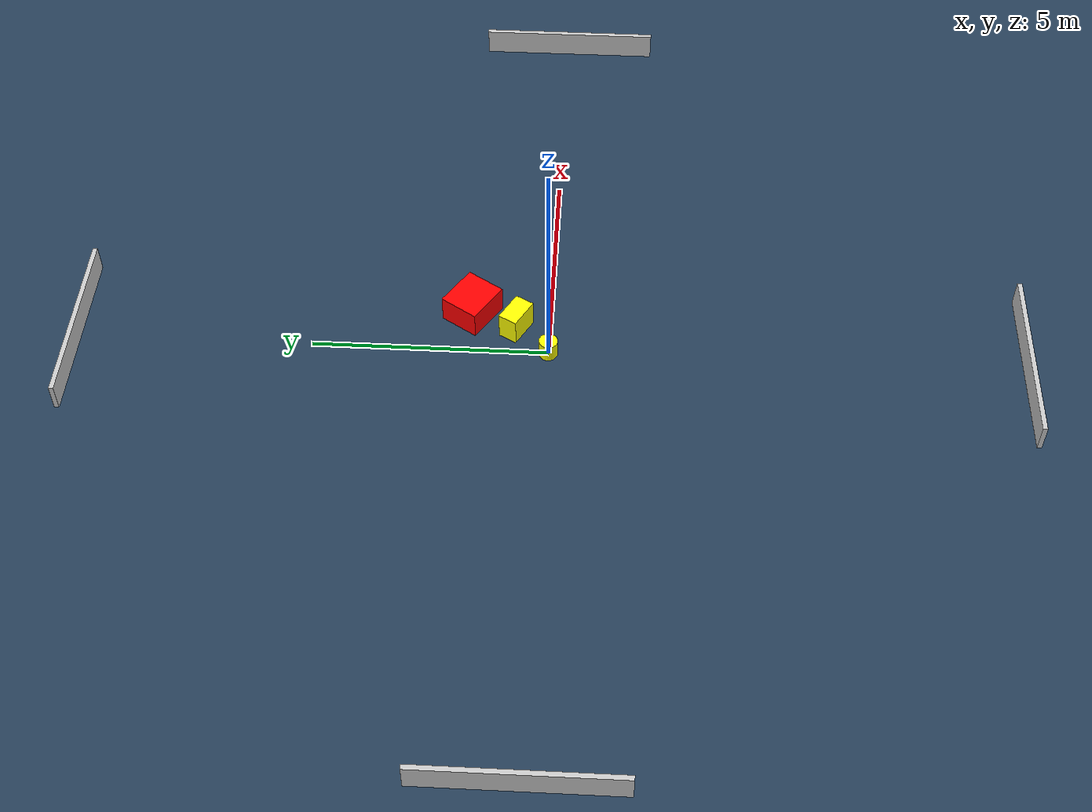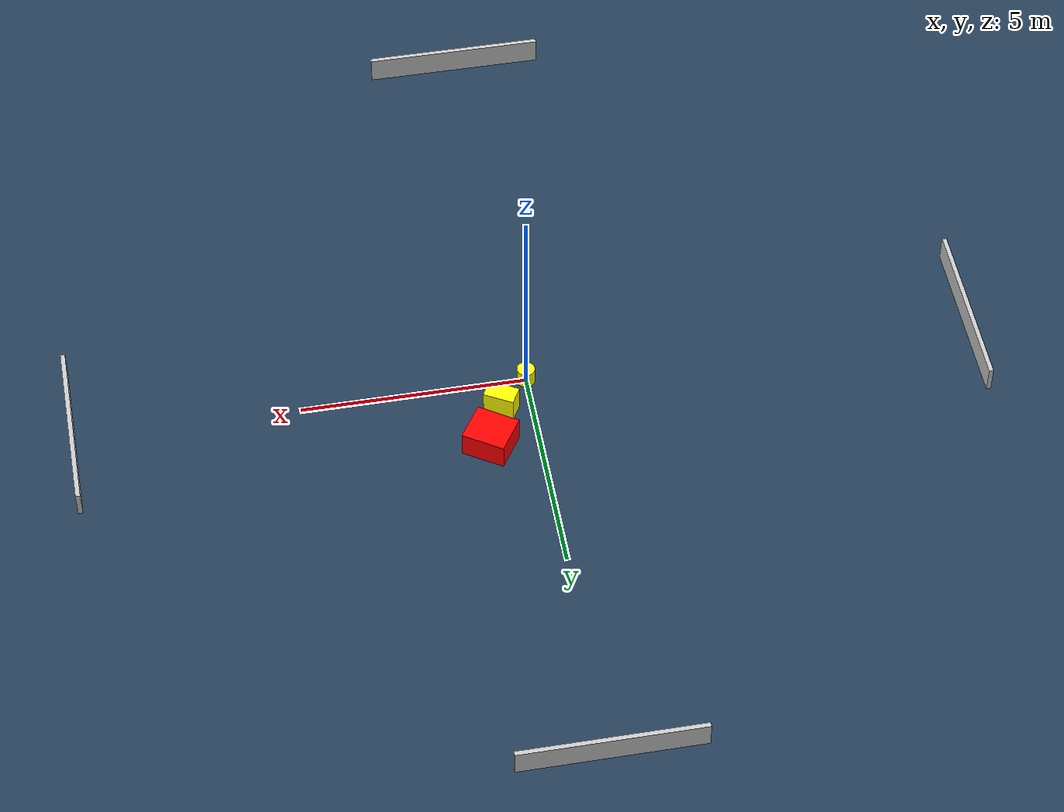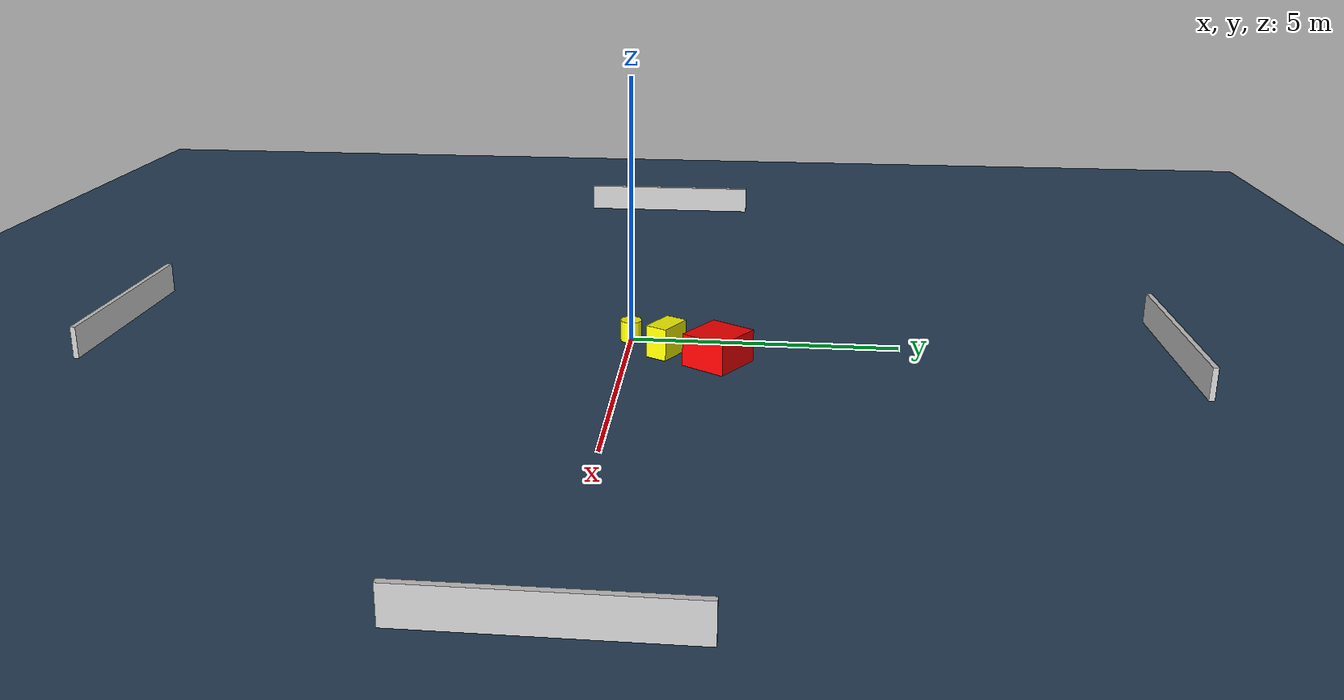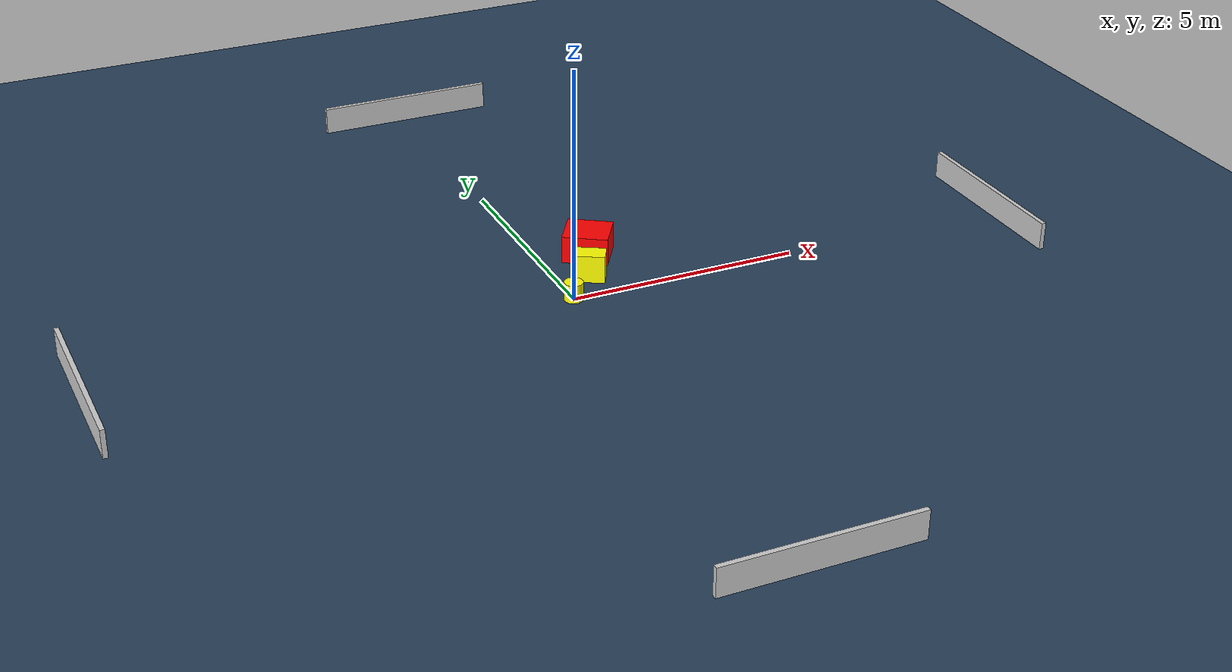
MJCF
<?xml version="1.0" ?>
<mujoco model="generated_environment">
  <option timestep="0.01" integrator="RK4" cone="elliptic"/>
  <default>
    <geom density="1"/>
  </default>
  <asset>
    <texture builtin="gradient" height="3072" name="skybox" rgb1="0.3 0.5 0.7" rgb2="0 0 0" type="skybox" width="512"/>
    <texture builtin="checker" height="300" name="groundplane" rgb1="0.2 0.3 0.4" rgb2="0.1 0.2 0.3" type="2d" width="300"/>
    <material name="groundplane" reflectance="0.2" texrepeat="5 5" texture="groundplane"/>
  </asset>
  <worldbody>
    <light dir="0 0 -1" directional="true" pos="0 0 1.5"/>
    <geom condim="3" friction="0.5 0.005 0.001" material="groundplane" name="floor" pos="0 0 0" size="0 0 0.05" type="plane"/>
    <body name="walls">
      <geom name="wall_1" condim="4" pos="-10.0 0.0 0.3" rgba="0.800000011920929 0.800000011920929 0.800000011920929 1.0" size="0.05 2.0 0.3" type="box"/>
      <geom name="wall_2" condim="4" pos="10.0 0.0 0.3" rgba="0.800000011920929 0.800000011920929 0.800000011920929 1.0" size="0.05 2.0 0.3" type="box"/>
      <geom name="wall_3" condim="4" pos="0.0 -10.0 0.3" rgba="0.800000011920929 0.800000011920929 0.800000011920929 1.0" size="2.0 0.05 0.3" type="box"/>
      <geom name="wall_4" condim="4" pos="0.0 10.0 0.3" rgba="0.800000011920929 0.800000011920929 0.800000011920929 1.0" size="2.0 0.05 0.3" type="box"/>
    </body>
    <body name="robot">
      <joint name="joint_x" type="slide" pos="0 0 0" axis="1 0 0"/>
      <joint name="joint_y" type="slide" pos="0 0 0" axis="0 1 0"/>
      <geom name="robot" type="cylinder" pos="0.0 0.0 0.2" size="0.2 0.2 0.0" mass="5.0" friction="1.0 0.005 0.0001" condim="4" rgba="1.0 1.0 0.0 1.0"/>
    </body>
    <body name="obstacle_1_movable">
      <geom name="obstacle_1_movable" condim="4" pos="0.6685351861004435 0.7163378279850382 0.3" euler="0 0 240.58556553658377" friction="0.0 0.005 0.001" rgba="1.0 1.0 0.0 1.0" size="0.21007418979147066 0.34432293864019015 0.3" type="box" mass="0.1"/>
      <joint type="free"/>
    </body>
    <body name="obstacle_2_static">
      <geom name="obstacle_2_static" condim="4" pos="1.0683544316240985 1.67839214423577 0.3" euler="0 0 147.16793753095277" friction="0.0 0.005 0.001" rgba="1.0 0.0 0.0 1.0" size="0.48796392977388164 0.4364839852739502 0.3" type="box"/>
    </body>
  </worldbody>
  <actuator>
    <motor name="actuator_x" joint="joint_x" gear="1" ctrlrange="-1 1"/>
    <motor name="actuator_y" joint="joint_y" gear="1" ctrlrange="-1 1"/>
  </actuator>
</mujoco>
